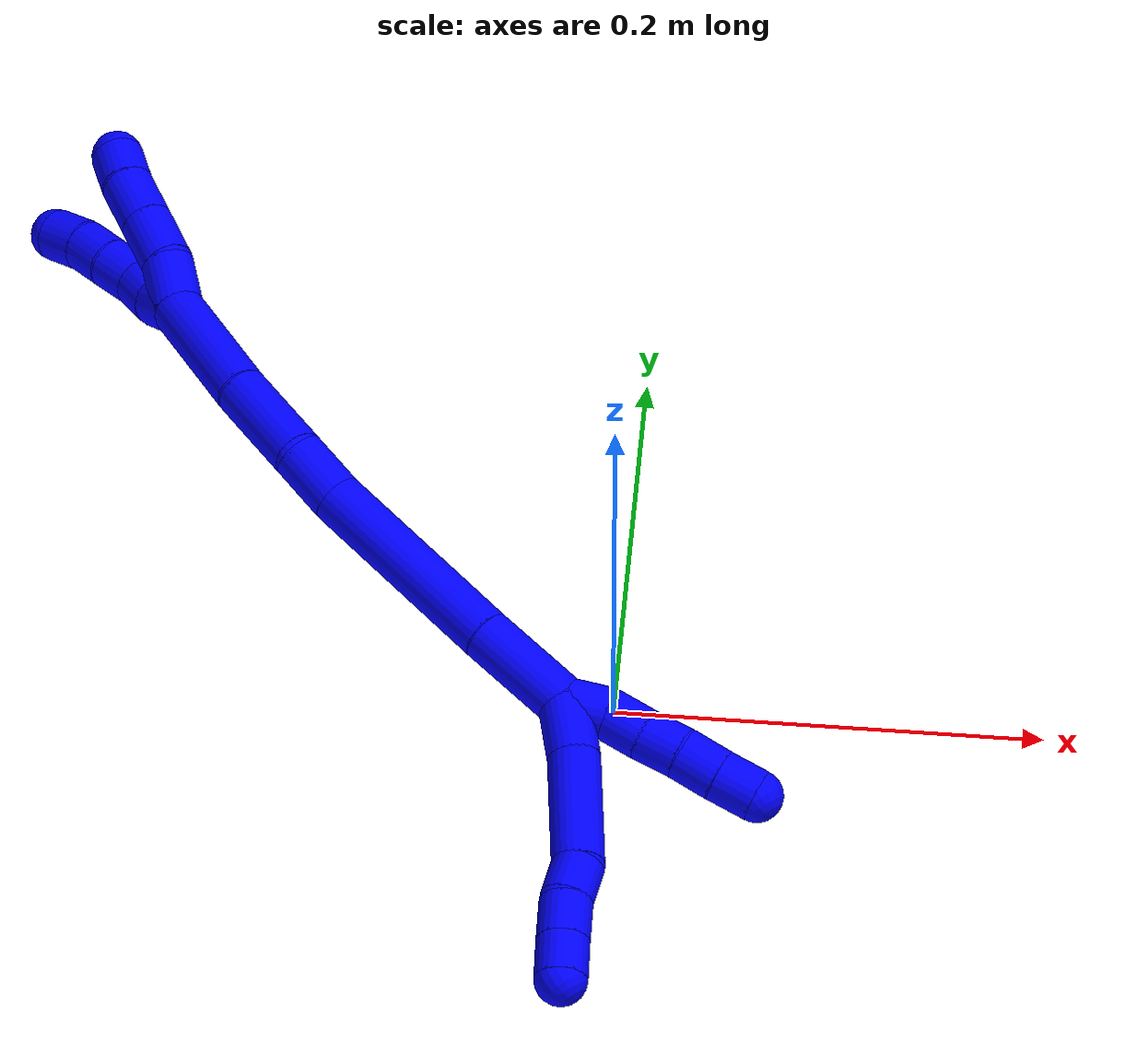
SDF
<sdf version="1.7">
 <world name="default">
  <model name="photoneo_s_sensor">
   <static>1</static>
   <pose>0 0 2 1.57079 1.57079 3.14159</pose>
   <link name="link">
    <inertial><mass>0.1</mass></inertial>
    <sensor name="sensor" type="depth">
     <update_rate>30</update_rate>
     <camera>
      <horizontal_fov>1.22</horizontal_fov>
      <image><width>1920</width><height>1200</height><format>B8G8R8</format></image>
      <clip><near>0.1</near><far>4</far></clip>
      <depth_camera><output>points</output></depth_camera>
     </camera>
     <plugin name="camera_plugin" filename="libgazebo_ros_depth_camera.so">
      <baseline>0.2</baseline>
      <alwaysOn>1</alwaysOn>
      <updateRate>0.0</updateRate>
      <cameraName>camera_ir</cameraName>
      <imageTopicName>/camera/color/image_raw</imageTopicName>
      <cameraInfoTopicName>/camera/color/camera_info</cameraInfoTopicName>
      <depthImageTopicName>/camera/depth/image_raw</depthImageTopicName>
      <depthImageCameraInfoTopicName>/camera/depth/camera_info</depthImageCameraInfoTopicName>
      <pointCloudTopicName>/camera/depth/points</pointCloudTopicName>
      <frameName>fr_optical</frameName>
      <pointCloudCutoff>0.1</pointCloudCutoff>
      <pointCloudCutoffMax>2.0</pointCloudCutoffMax>
      <distortionK1>0</distortionK1>
      <distortionK2>0</distortionK2>
      <distortionK3>0</distortionK3>
      <distortionT1>0</distortionT1>
      <distortionT2>0</distortionT2>
      <CxPrime>0</CxPrime>
      <Cx>0</Cx>
      <Cy>0</Cy>
      <focalLength>0</focalLength>
      <hackBaseline>0</hackBaseline>
     </plugin>
    </sensor>
   </link>
  </model>
  <model name="bin">
   <static>1</static>
   <link name="bottom">
    <collision name="collision-bottom">
     <pose>0 0 -0.01 0 -0 0</pose>
     <geometry><box><size>0.8 0.6 0.02</size></box></geometry>
     <surface>
      <friction><ode><mu>100</mu><mu2>100</mu2></ode></friction>
      <contact><collide_bitmask>65535</collide_bitmask></contact>
     </surface>
    </collision>
   </link>
   <link name="west_wall">
    <collision name="collision-west_wall">
     <pose>-0.41 0 0.1 0 -0 0</pose>
     <geometry><box><size>0.02 0.6 0.2</size></box></geometry>
     <surface>
      <friction><ode><mu>100</mu><mu2>100</mu2></ode></friction>
      <contact><collide_bitmask>65535</collide_bitmask></contact>
     </surface>
    </collision>
   </link>
   <link name="east_wall">
    <collision name="collision-east_wall">
     <pose>0.41 0 0.1 0 -0 0</pose>
     <geometry><box><size>0.02 0.6 0.2</size></box></geometry>
     <surface>
      <friction><ode><mu>100</mu><mu2>100</mu2></ode></friction>
      <contact><collide_bitmask>65535</collide_bitmask></contact>
     </surface>
    </collision>
   </link>
   <link name="south_wall">
    <collision name="collision-south_wall">
     <pose>0 -0.31 0.1 0 -0 0</pose>
     <geometry><box><size>0.8 0.02 0.2</size></box></geometry>
     <surface>
      <friction><ode><mu>100</mu><mu2>100</mu2></ode></friction>
      <contact><collide_bitmask>65535</collide_bitmask></contact>
     </surface>
    </collision>
   </link>
   <link name="north_wall">
    <collision name="collision-north_wall">
     <pose>0 0.31 0.1 0 -0 0</pose>
     <geometry><box><size>0.8 0.02 0.2</size></box></geometry>
     <surface>
      <friction><ode><mu>100</mu><mu2>100</mu2></ode></friction>
      <contact><collide_bitmask>65535</collide_bitmask></contact>
     </surface>
    </collision>
   </link>
  </model>
  <model name="1">
   <static>0</static>
   <link name="1">
    <collision name="collision-cylinder-e_1_2_8">
     <pose>-0.000139 -0.006528 -0.012762 2.66879 -0.009706 -0.040283</pose>
     <geometry><cylinder><radius>0.0125</radius><length>0.028671</length></cylinder></geometry>
     <surface>
      <friction><ode><mu>1.16</mu><mu2>1.16</mu2><slip1>0</slip1><slip2>0</slip2></ode></friction>
      <contact><ode><kp>1e+06</kp><kd>1</kd><max_vel>0</max_vel><min_depth>0.001</min_depth></ode></contact>
     </surface>
    </collision>
    <visual name="visual-cylinder-e_1_2_8">
     <pose>-0.000139 -0.006528 -0.012762 2.66879 -0.009706 -0.040283</pose>
     <geometry><cylinder><radius>0.0125</radius><length>0.028671</length></cylinder></geometry>
     <material><ambient>0 0 1 1</ambient></material>
    </visual>
    <collision name="collision-cylinder-e_2_8_9">
     <pose>0.001338 -0.03099 -0.04934 2.49613 0.054158 0.161633</pose>
     <geometry><cylinder><radius>0.0125</radius><length>0.059714</length></cylinder></geometry>
     <surface>
      <friction><ode><mu>1.16</mu><mu2>1.16</mu2><slip1>0</slip1><slip2>0</slip2></ode></friction>
      <contact><ode><kp>1e+06</kp><kd>1</kd><max_vel>0</max_vel><min_depth>0.001</min_depth></ode></contact>
     </surface>
    </collision>
    <visual name="visual-cylinder-e_2_8_9">
     <pose>0.001338 -0.03099 -0.04934 2.49613 0.054158 0.161633</pose>
     <geometry><cylinder><radius>0.0125</radius><length>0.059714</length></cylinder></geometry>
     <material><ambient>0 0 1 1</ambient></material>
    </visual>
    <collision name="collision-cylinder-e_3_9_10">
     <pose>0.002292 -0.057091 -0.079331 2.2183 -0.064612 -0.129735</pose>
     <geometry><cylinder><radius>0.0125</radius><length>0.020519</length></cylinder></geometry>
     <surface>
      <friction><ode><mu>1.16</mu><mu2>1.16</mu2><slip1>0</slip1><slip2>0</slip2></ode></friction>
      <contact><ode><kp>1e+06</kp><kd>1</kd><max_vel>0</max_vel><min_depth>0.001</min_depth></ode></contact>
     </surface>
    </collision>
    <visual name="visual-cylinder-e_3_9_10">
     <pose>0.002292 -0.057091 -0.079331 2.2183 -0.064612 -0.129735</pose>
     <geometry><cylinder><radius>0.0125</radius><length>0.020519</length></cylinder></geometry>
     <material><ambient>0 0 1 1</ambient></material>
    </visual>
    <collision name="collision-cylinder-e_4_10_11">
     <pose>0.000861 -0.071905 -0.093508 2.44826 -0.073746 -0.203525</pose>
     <geometry><cylinder><radius>0.0125</radius><length>0.020863</length></cylinder></geometry>
     <surface>
      <friction><ode><mu>1.16</mu><mu2>1.16</mu2><slip1>0</slip1><slip2>0</slip2></ode></friction>
      <contact><ode><kp>1e+06</kp><kd>1</kd><max_vel>0</max_vel><min_depth>0.001</min_depth></ode></contact>
     </surface>
    </collision>
    <visual name="visual-cylinder-e_4_10_11">
     <pose>0.000861 -0.071905 -0.093508 2.44826 -0.073746 -0.203525</pose>
     <geometry><cylinder><radius>0.0125</radius><length>0.020863</length></cylinder></geometry>
     <material><ambient>0 0 1 1</ambient></material>
    </visual>
    <collision name="collision-cylinder-e_5_11_6">
     <pose>-0.000434 -0.084897 -0.109373 2.46288 -0.052051 -0.147216</pose>
     <geometry><cylinder><radius>0.0125</radius><length>0.020233</length></cylinder></geometry>
     <surface>
      <friction><ode><mu>1.16</mu><mu2>1.16</mu2><slip1>0</slip1><slip2>0</slip2></ode></friction>
      <contact><ode><kp>1e+06</kp><kd>1</kd><max_vel>0</max_vel><min_depth>0.001</min_depth></ode></contact>
     </surface>
    </collision>
    <visual name="visual-cylinder-e_5_11_6">
     <pose>-0.000434 -0.084897 -0.109373 2.46288 -0.052051 -0.147216</pose>
     <geometry><cylinder><radius>0.0125</radius><length>0.020233</length></cylinder></geometry>
     <material><ambient>0 0 1 1</ambient></material>
    </visual>
    <collision name="collision-cylinder-e_1_2_12">
     <pose>0.003317 0.006254 -0.007063 -2.41687 0.338118 -0.846109</pose>
     <geometry><cylinder><radius>0.0125</radius><length>0.02</length></cylinder></geometry>
     <surface>
      <friction><ode><mu>1.16</mu><mu2>1.16</mu2><slip1>0</slip1><slip2>0</slip2></ode></friction>
      <contact><ode><kp>1e+06</kp><kd>1</kd><max_vel>0</max_vel><min_depth>0.001</min_depth></ode></contact>
     </surface>
    </collision>
    <visual name="visual-cylinder-e_1_2_12">
     <pose>0.003317 0.006254 -0.007063 -2.41687 0.338118 -0.846109</pose>
     <geometry><cylinder><radius>0.0125</radius><length>0.02</length></cylinder></geometry>
     <material><ambient>0 0 1 1</ambient></material>
    </visual>
    <collision name="collision-cylinder-e_2_12_13">
     <pose>0.009265 0.016237 -0.023024 -2.74468 0.26618 -1.17472</pose>
     <geometry><cylinder><radius>0.0125</radius><length>0.02</length></cylinder></geometry>
     <surface>
      <friction><ode><mu>1.16</mu><mu2>1.16</mu2><slip1>0</slip1><slip2>0</slip2></ode></friction>
      <contact><ode><kp>1e+06</kp><kd>1</kd><max_vel>0</max_vel><min_depth>0.001</min_depth></ode></contact>
     </surface>
    </collision>
    <visual name="visual-cylinder-e_2_12_13">
     <pose>0.009265 0.016237 -0.023024 -2.74468 0.26618 -1.17472</pose>
     <geometry><cylinder><radius>0.0125</radius><length>0.02</length></cylinder></geometry>
     <material><ambient>0 0 1 1</ambient></material>
    </visual>
    <collision name="collision-cylinder-e_3_13_14">
     <pose>0.015605 0.023247 -0.040609 -2.78055 0.380089 -1.62337</pose>
     <geometry><cylinder><radius>0.0125</radius><length>0.02</length></cylinder></geometry>
     <surface>
      <friction><ode><mu>1.16</mu><mu2>1.16</mu2><slip1>0</slip1><slip2>0</slip2></ode></friction>
      <contact><ode><kp>1e+06</kp><kd>1</kd><max_vel>0</max_vel><min_depth>0.001</min_depth></ode></contact>
     </surface>
    </collision>
    <visual name="visual-cylinder-e_3_13_14">
     <pose>0.015605 0.023247 -0.040609 -2.78055 0.380089 -1.62337</pose>
     <geometry><cylinder><radius>0.0125</radius><length>0.02</length></cylinder></geometry>
     <material><ambient>0 0 1 1</ambient></material>
    </visual>
    <collision name="collision-cylinder-e_4_14_15">
     <pose>0.021966 0.030012 -0.058288 -2.77193 0.268261 -1.25033</pose>
     <geometry><cylinder><radius>0.0125</radius><length>0.02</length></cylinder></geometry>
     <surface>
      <friction><ode><mu>1.16</mu><mu2>1.16</mu2><slip1>0</slip1><slip2>0</slip2></ode></friction>
      <contact><ode><kp>1e+06</kp><kd>1</kd><max_vel>0</max_vel><min_depth>0.001</min_depth></ode></contact>
     </surface>
    </collision>
    <visual name="visual-cylinder-e_4_14_15">
     <pose>0.021966 0.030012 -0.058288 -2.77193 0.268261 -1.25033</pose>
     <geometry><cylinder><radius>0.0125</radius><length>0.02</length></cylinder></geometry>
     <material><ambient>0 0 1 1</ambient></material>
    </visual>
    <collision name="collision-cylinder-e_5_15_5">
     <pose>0.027347 0.037434 -0.076056 -2.71983 0.276548 -1.15288</pose>
     <geometry><cylinder><radius>0.0125</radius><length>0.02</length></cylinder></geometry>
     <surface>
      <friction><ode><mu>1.16</mu><mu2>1.16</mu2><slip1>0</slip1><slip2>0</slip2></ode></friction>
      <contact><ode><kp>1e+06</kp><kd>1</kd><max_vel>0</max_vel><min_depth>0.001</min_depth></ode></contact>
     </surface>
    </collision>
    <visual name="visual-cylinder-e_5_15_5">
     <pose>0.027347 0.037434 -0.076056 -2.71983 0.276548 -1.15288</pose>
     <geometry><cylinder><radius>0.0125</radius><length>0.02</length></cylinder></geometry>
     <material><ambient>0 0 1 1</ambient></material>
    </visual>
    <collision name="collision-cylinder-e_1_2_16">
     <pose>-0.007611 -0.002105 0.02442 0.085984 -0.301078 -0.01305</pose>
     <geometry><cylinder><radius>0.0125</radius><length>0.05133</length></cylinder></geometry>
     <surface>
      <friction><ode><mu>1.16</mu><mu2>1.16</mu2><slip1>0</slip1><slip2>0</slip2></ode></friction>
      <contact><ode><kp>1e+06</kp><kd>1</kd><max_vel>0</max_vel><min_depth>0.001</min_depth></ode></contact>
     </surface>
    </collision>
    <visual name="visual-cylinder-e_1_2_16">
     <pose>-0.007611 -0.002105 0.02442 0.085984 -0.301078 -0.01305</pose>
     <geometry><cylinder><radius>0.0125</radius><length>0.05133</length></cylinder></geometry>
     <material><ambient>0 0 1 1</ambient></material>
    </visual>
    <collision name="collision-cylinder-e_2_16_17">
     <pose>-0.031648 -0.005632 0.097844 0.029021 -0.323295 -0.004733</pose>
     <geometry><cylinder><radius>0.0125</radius><length>0.103405</length></cylinder></geometry>
     <surface>
      <friction><ode><mu>1.16</mu><mu2>1.16</mu2><slip1>0</slip1><slip2>0</slip2></ode></friction>
      <contact><ode><kp>1e+06</kp><kd>1</kd><max_vel>0</max_vel><min_depth>0.001</min_depth></ode></contact>
     </surface>
    </collision>
    <visual name="visual-cylinder-e_2_16_17">
     <pose>-0.031648 -0.005632 0.097844 0.029021 -0.323295 -0.004733</pose>
     <geometry><cylinder><radius>0.0125</radius><length>0.103405</length></cylinder></geometry>
     <material><ambient>0 0 1 1</ambient></material>
    </visual>
    <collision name="collision-cylinder-e_3_17_18">
     <pose>-0.051039 -0.007245 0.161217 0.013233 -0.203532 -0.001351</pose>
     <geometry><cylinder><radius>0.0125</radius><length>0.029349</length></cylinder></geometry>
     <surface>
      <friction><ode><mu>1.16</mu><mu2>1.16</mu2><slip1>0</slip1><slip2>0</slip2></ode></friction>
      <contact><ode><kp>1e+06</kp><kd>1</kd><max_vel>0</max_vel><min_depth>0.001</min_depth></ode></contact>
     </surface>
    </collision>
    <visual name="visual-cylinder-e_3_17_18">
     <pose>-0.051039 -0.007245 0.161217 0.013233 -0.203532 -0.001351</pose>
     <geometry><cylinder><radius>0.0125</radius><length>0.029349</length></cylinder></geometry>
     <material><ambient>0 0 1 1</ambient></material>
    </visual>
    <collision name="collision-cylinder-e_4_18_19">
     <pose>-0.063519 -0.003429 0.19798 -0.177046 -0.396117 0.035621</pose>
     <geometry><cylinder><radius>0.0125</radius><length>0.049314</length></cylinder></geometry>
     <surface>
      <friction><ode><mu>1.16</mu><mu2>1.16</mu2><slip1>0</slip1><slip2>0</slip2></ode></friction>
      <contact><ode><kp>1e+06</kp><kd>1</kd><max_vel>0</max_vel><min_depth>0.001</min_depth></ode></contact>
     </surface>
    </collision>
    <visual name="visual-cylinder-e_4_18_19">
     <pose>-0.063519 -0.003429 0.19798 -0.177046 -0.396117 0.035621</pose>
     <geometry><cylinder><radius>0.0125</radius><length>0.049314</length></cylinder></geometry>
     <material><ambient>0 0 1 1</ambient></material>
    </visual>
    <collision name="collision-cylinder-e_5_19_1">
     <pose>-0.086823 0.009424 0.249363 -0.296181 -0.426968 0.064659</pose>
     <geometry><cylinder><radius>0.0125</radius><length>0.066602</length></cylinder></geometry>
     <surface>
      <friction><ode><mu>1.16</mu><mu2>1.16</mu2><slip1>0</slip1><slip2>0</slip2></ode></friction>
      <contact><ode><kp>1e+06</kp><kd>1</kd><max_vel>0</max_vel><min_depth>0.001</min_depth></ode></contact>
     </surface>
    </collision>
    <visual name="visual-cylinder-e_5_19_1">
     <pose>-0.086823 0.009424 0.249363 -0.296181 -0.426968 0.064659</pose>
     <geometry><cylinder><radius>0.0125</radius><length>0.066602</length></cylinder></geometry>
     <material><ambient>0 0 1 1</ambient></material>
    </visual>
    <collision name="collision-cylinder-e_1_1_20">
     <pose>-0.101006 0.023652 0.290054 -0.431052 -0.030453 0.006667</pose>
     <geometry><cylinder><radius>0.0125</radius><length>0.025766</length></cylinder></geometry>
     <surface>
      <friction><ode><mu>1.16</mu><mu2>1.16</mu2><slip1>0</slip1><slip2>0</slip2></ode></friction>
      <contact><ode><kp>1e+06</kp><kd>1</kd><max_vel>0</max_vel><min_depth>0.001</min_depth></ode></contact>
     </surface>
    </collision>
    <visual name="visual-cylinder-e_1_1_20">
     <pose>-0.101006 0.023652 0.290054 -0.431052 -0.030453 0.006667</pose>
     <geometry><cylinder><radius>0.0125</radius><length>0.025766</length></cylinder></geometry>
     <material><ambient>0 0 1 1</ambient></material>
    </visual>
    <collision name="collision-cylinder-e_2_20_21">
     <pose>-0.105208 0.033663 0.314161 -0.357162 -0.280129 0.050887</pose>
     <geometry><cylinder><radius>0.0125</radius><length>0.027563</length></cylinder></geometry>
     <surface>
      <friction><ode><mu>1.16</mu><mu2>1.16</mu2><slip1>0</slip1><slip2>0</slip2></ode></friction>
      <contact><ode><kp>1e+06</kp><kd>1</kd><max_vel>0</max_vel><min_depth>0.001</min_depth></ode></contact>
     </surface>
    </collision>
    <visual name="visual-cylinder-e_2_20_21">
     <pose>-0.105208 0.033663 0.314161 -0.357162 -0.280129 0.050887</pose>
     <geometry><cylinder><radius>0.0125</radius><length>0.027563</length></cylinder></geometry>
     <material><ambient>0 0 1 1</ambient></material>
    </visual>
    <collision name="collision-cylinder-e_3_21_22">
     <pose>-0.112739 0.042728 0.33849 -0.356214 -0.28461 0.051571</pose>
     <geometry><cylinder><radius>0.0125</radius><length>0.026505</length></cylinder></geometry>
     <surface>
      <friction><ode><mu>1.16</mu><mu2>1.16</mu2><slip1>0</slip1><slip2>0</slip2></ode></friction>
      <contact><ode><kp>1e+06</kp><kd>1</kd><max_vel>0</max_vel><min_depth>0.001</min_depth></ode></contact>
     </surface>
    </collision>
    <visual name="visual-cylinder-e_3_21_22">
     <pose>-0.112739 0.042728 0.33849 -0.356214 -0.28461 0.051571</pose>
     <geometry><cylinder><radius>0.0125</radius><length>0.026505</length></cylinder></geometry>
     <material><ambient>0 0 1 1</ambient></material>
    </visual>
    <collision name="collision-cylinder-e_4_22_4">
     <pose>-0.119178 0.051794 0.358946 -0.497084 -0.272929 0.069671</pose>
     <geometry><cylinder><radius>0.0125</radius><length>0.020167</length></cylinder></geometry>
     <surface>
      <friction><ode><mu>1.16</mu><mu2>1.16</mu2><slip1>0</slip1><slip2>0</slip2></ode></friction>
      <contact><ode><kp>1e+06</kp><kd>1</kd><max_vel>0</max_vel><min_depth>0.001</min_depth></ode></contact>
     </surface>
    </collision>
    <visual name="visual-cylinder-e_4_22_4">
     <pose>-0.119178 0.051794 0.358946 -0.497084 -0.272929 0.069671</pose>
     <geometry><cylinder><radius>0.0125</radius><length>0.020167</length></cylinder></geometry>
     <material><ambient>0 0 1 1</ambient></material>
    </visual>
    <collision name="collision-cylinder-e_1_1_23">
     <pose>-0.108135 0.020816 0.284434 -0.396397 -0.85134 0.181613</pose>
     <geometry><cylinder><radius>0.0125</radius><length>0.02</length></cylinder></geometry>
     <surface>
      <friction><ode><mu>1.16</mu><mu2>1.16</mu2><slip1>0</slip1><slip2>0</slip2></ode></friction>
      <contact><ode><kp>1e+06</kp><kd>1</kd><max_vel>0</max_vel><min_depth>0.001</min_depth></ode></contact>
     </surface>
    </collision>
    <visual name="visual-cylinder-e_1_1_23">
     <pose>-0.108135 0.020816 0.284434 -0.396397 -0.85134 0.181613</pose>
     <geometry><cylinder><radius>0.0125</radius><length>0.02</length></cylinder></geometry>
     <material><ambient>0 0 1 1</ambient></material>
    </visual>
    <collision name="collision-cylinder-e_2_23_24">
     <pose>-0.12106 0.026173 0.298442 -0.340869 -0.570894 0.100926</pose>
     <geometry><cylinder><radius>0.0125</radius><length>0.02</length></cylinder></geometry>
     <surface>
      <friction><ode><mu>1.16</mu><mu2>1.16</mu2><slip1>0</slip1><slip2>0</slip2></ode></friction>
      <contact><ode><kp>1e+06</kp><kd>1</kd><max_vel>0</max_vel><min_depth>0.001</min_depth></ode></contact>
     </surface>
    </collision>
    <visual name="visual-cylinder-e_2_23_24">
     <pose>-0.12106 0.026173 0.298442 -0.340869 -0.570894 0.100926</pose>
     <geometry><cylinder><radius>0.0125</radius><length>0.02</length></cylinder></geometry>
     <material><ambient>0 0 1 1</ambient></material>
    </visual>
    <collision name="collision-cylinder-e_3_24_25">
     <pose>-0.131546 0.029029 0.314985 -0.005016 -0.533069 0.00137</pose>
     <geometry><cylinder><radius>0.0125</radius><length>0.02</length></cylinder></geometry>
     <surface>
      <friction><ode><mu>1.16</mu><mu2>1.16</mu2><slip1>0</slip1><slip2>0</slip2></ode></friction>
      <contact><ode><kp>1e+06</kp><kd>1</kd><max_vel>0</max_vel><min_depth>0.001</min_depth></ode></contact>
     </surface>
    </collision>
    <visual name="visual-cylinder-e_3_24_25">
     <pose>-0.131546 0.029029 0.314985 -0.005016 -0.533069 0.00137</pose>
     <geometry><cylinder><radius>0.0125</radius><length>0.02</length></cylinder></geometry>
     <material><ambient>0 0 1 1</ambient></material>
    </visual>
    <collision name="collision-cylinder-e_4_25_26">
     <pose>-0.142164 0.030036 0.331869 -0.115943 -0.586741 0.035061</pose>
     <geometry><cylinder><radius>0.0125</radius><length>0.02</length></cylinder></geometry>
     <surface>
      <friction><ode><mu>1.16</mu><mu2>1.16</mu2><slip1>0</slip1><slip2>0</slip2></ode></friction>
      <contact><ode><kp>1e+06</kp><kd>1</kd><max_vel>0</max_vel><min_depth>0.001</min_depth></ode></contact>
     </surface>
    </collision>
    <visual name="visual-cylinder-e_4_25_26">
     <pose>-0.142164 0.030036 0.331869 -0.115943 -0.586741 0.035061</pose>
     <geometry><cylinder><radius>0.0125</radius><length>0.02</length></cylinder></geometry>
     <material><ambient>0 0 1 1</ambient></material>
    </visual>
    <collision name="collision-cylinder-e_5_26_3">
     <pose>-0.154457 0.030923 0.347512 0.010343 -0.741861 -0.004023</pose>
     <geometry><cylinder><radius>0.0125</radius><length>0.02</length></cylinder></geometry>
     <surface>
      <friction><ode><mu>1.16</mu><mu2>1.16</mu2><slip1>0</slip1><slip2>0</slip2></ode></friction>
      <contact><ode><kp>1e+06</kp><kd>1</kd><max_vel>0</max_vel><min_depth>0.001</min_depth></ode></contact>
     </surface>
    </collision>
    <visual name="visual-cylinder-e_5_26_3">
     <pose>-0.154457 0.030923 0.347512 0.010343 -0.741861 -0.004023</pose>
     <geometry><cylinder><radius>0.0125</radius><length>0.02</length></cylinder></geometry>
     <material><ambient>0 0 1 1</ambient></material>
    </visual>
    <collision name="collision-sphere-3">
     <pose>-0.161214 0.030846 0.354884 0 -0 0</pose>
     <geometry><sphere><radius>0.0125</radius></sphere></geometry>
     <surface>
      <friction><ode><mu>1.16</mu><mu2>1.16</mu2><slip1>0</slip1><slip2>0</slip2></ode></friction>
      <contact><ode><kp>1e+06</kp><kd>1</kd><max_vel>0</max_vel><min_depth>0.001</min_depth></ode></contact>
     </surface>
    </collision>
    <visual name="visual-sphere-3">
     <pose>-0.161214 0.030846 0.354884 0 -0 0</pose>
     <geometry><sphere><radius>0.0125</radius></sphere></geometry>
     <material><ambient>0 0 1 1</ambient></material>
    </visual>
    <collision name="collision-sphere-26">
     <pose>-0.147701 0.030999 0.34014 0 -0 0</pose>
     <geometry><sphere><radius>0.0125</radius></sphere></geometry>
     <surface>
      <friction><ode><mu>1.16</mu><mu2>1.16</mu2><slip1>0</slip1><slip2>0</slip2></ode></friction>
      <contact><ode><kp>1e+06</kp><kd>1</kd><max_vel>0</max_vel><min_depth>0.001</min_depth></ode></contact>
     </surface>
    </collision>
    <visual name="visual-sphere-26">
     <pose>-0.147701 0.030999 0.34014 0 -0 0</pose>
     <geometry><sphere><radius>0.0125</radius></sphere></geometry>
     <material><ambient>0 0 1 1</ambient></material>
    </visual>
    <collision name="collision-sphere-25">
     <pose>-0.136628 0.029072 0.323597 0 -0 0</pose>
     <geometry><sphere><radius>0.0125</radius></sphere></geometry>
     <surface>
      <friction><ode><mu>1.16</mu><mu2>1.16</mu2><slip1>0</slip1><slip2>0</slip2></ode></friction>
      <contact><ode><kp>1e+06</kp><kd>1</kd><max_vel>0</max_vel><min_depth>0.001</min_depth></ode></contact>
     </surface>
    </collision>
    <visual name="visual-sphere-25">
     <pose>-0.136628 0.029072 0.323597 0 -0 0</pose>
     <geometry><sphere><radius>0.0125</radius></sphere></geometry>
     <material><ambient>0 0 1 1</ambient></material>
    </visual>
    <collision name="collision-sphere-24">
     <pose>-0.126464 0.028986 0.306372 0 -0 0</pose>
     <geometry><sphere><radius>0.0125</radius></sphere></geometry>
     <surface>
      <friction><ode><mu>1.16</mu><mu2>1.16</mu2><slip1>0</slip1><slip2>0</slip2></ode></friction>
      <contact><ode><kp>1e+06</kp><kd>1</kd><max_vel>0</max_vel><min_depth>0.001</min_depth></ode></contact>
     </surface>
    </collision>
    <visual name="visual-sphere-24">
     <pose>-0.126464 0.028986 0.306372 0 -0 0</pose>
     <geometry><sphere><radius>0.0125</radius></sphere></geometry>
     <material><ambient>0 0 1 1</ambient></material>
    </visual>
    <collision name="collision-sphere-23">
     <pose>-0.115657 0.02336 0.290512 0 -0 0</pose>
     <geometry><sphere><radius>0.0125</radius></sphere></geometry>
     <surface>
      <friction><ode><mu>1.16</mu><mu2>1.16</mu2><slip1>0</slip1><slip2>0</slip2></ode></friction>
      <contact><ode><kp>1e+06</kp><kd>1</kd><max_vel>0</max_vel><min_depth>0.001</min_depth></ode></contact>
     </surface>
    </collision>
    <visual name="visual-sphere-23">
     <pose>-0.115657 0.02336 0.290512 0 -0 0</pose>
     <geometry><sphere><radius>0.0125</radius></sphere></geometry>
     <material><ambient>0 0 1 1</ambient></material>
    </visual>
    <collision name="collision-sphere-4">
     <pose>-0.121896 0.056425 0.367481 0 -0 0</pose>
     <geometry><sphere><radius>0.0125</radius></sphere></geometry>
     <surface>
      <friction><ode><mu>1.16</mu><mu2>1.16</mu2><slip1>0</slip1><slip2>0</slip2></ode></friction>
      <contact><ode><kp>1e+06</kp><kd>1</kd><max_vel>0</max_vel><min_depth>0.001</min_depth></ode></contact>
     </surface>
    </collision>
    <visual name="visual-sphere-4">
     <pose>-0.121896 0.056425 0.367481 0 -0 0</pose>
     <geometry><sphere><radius>0.0125</radius></sphere></geometry>
     <material><ambient>0 0 1 1</ambient></material>
    </visual>
    <collision name="collision-sphere-22">
     <pose>-0.11646 0.047164 0.350411 0 -0 0</pose>
     <geometry><sphere><radius>0.0125</radius></sphere></geometry>
     <surface>
      <friction><ode><mu>1.16</mu><mu2>1.16</mu2><slip1>0</slip1><slip2>0</slip2></ode></friction>
      <contact><ode><kp>1e+06</kp><kd>1</kd><max_vel>0</max_vel><min_depth>0.001</min_depth></ode></contact>
     </surface>
    </collision>
    <visual name="visual-sphere-22">
     <pose>-0.11646 0.047164 0.350411 0 -0 0</pose>
     <geometry><sphere><radius>0.0125</radius></sphere></geometry>
     <material><ambient>0 0 1 1</ambient></material>
    </visual>
    <collision name="collision-sphere-21">
     <pose>-0.109018 0.038293 0.32657 0 -0 0</pose>
     <geometry><sphere><radius>0.0125</radius></sphere></geometry>
     <surface>
      <friction><ode><mu>1.16</mu><mu2>1.16</mu2><slip1>0</slip1><slip2>0</slip2></ode></friction>
      <contact><ode><kp>1e+06</kp><kd>1</kd><max_vel>0</max_vel><min_depth>0.001</min_depth></ode></contact>
     </surface>
    </collision>
    <visual name="visual-sphere-21">
     <pose>-0.109018 0.038293 0.32657 0 -0 0</pose>
     <geometry><sphere><radius>0.0125</radius></sphere></geometry>
     <material><ambient>0 0 1 1</ambient></material>
    </visual>
    <collision name="collision-sphere-20">
     <pose>-0.101398 0.029032 0.301753 0 -0 0</pose>
     <geometry><sphere><radius>0.0125</radius></sphere></geometry>
     <surface>
      <friction><ode><mu>1.16</mu><mu2>1.16</mu2><slip1>0</slip1><slip2>0</slip2></ode></friction>
      <contact><ode><kp>1e+06</kp><kd>1</kd><max_vel>0</max_vel><min_depth>0.001</min_depth></ode></contact>
     </surface>
    </collision>
    <visual name="visual-sphere-20">
     <pose>-0.101398 0.029032 0.301753 0 -0 0</pose>
     <geometry><sphere><radius>0.0125</radius></sphere></geometry>
     <material><ambient>0 0 1 1</ambient></material>
    </visual>
    <collision name="collision-sphere-6">
     <pose>-0.00096 -0.091239 -0.117237 0 -0 0</pose>
     <geometry><sphere><radius>0.0125</radius></sphere></geometry>
     <surface>
      <friction><ode><mu>1.16</mu><mu2>1.16</mu2><slip1>0</slip1><slip2>0</slip2></ode></friction>
      <contact><ode><kp>1e+06</kp><kd>1</kd><max_vel>0</max_vel><min_depth>0.001</min_depth></ode></contact>
     </surface>
    </collision>
    <visual name="visual-sphere-6">
     <pose>-0.00096 -0.091239 -0.117237 0 -0 0</pose>
     <geometry><sphere><radius>0.0125</radius></sphere></geometry>
     <material><ambient>0 0 1 1</ambient></material>
    </visual>
    <collision name="collision-sphere-11">
     <pose>9.2e-05 -0.078554 -0.101509 0 -0 0</pose>
     <geometry><sphere><radius>0.0125</radius></sphere></geometry>
     <surface>
      <friction><ode><mu>1.16</mu><mu2>1.16</mu2><slip1>0</slip1><slip2>0</slip2></ode></friction>
      <contact><ode><kp>1e+06</kp><kd>1</kd><max_vel>0</max_vel><min_depth>0.001</min_depth></ode></contact>
     </surface>
    </collision>
    <visual name="visual-sphere-11">
     <pose>9.2e-05 -0.078554 -0.101509 0 -0 0</pose>
     <geometry><sphere><radius>0.0125</radius></sphere></geometry>
     <material><ambient>0 0 1 1</ambient></material>
    </visual>
    <collision name="collision-sphere-10">
     <pose>0.001629 -0.065257 -0.085507 0 -0 0</pose>
     <geometry><sphere><radius>0.0125</radius></sphere></geometry>
     <surface>
      <friction><ode><mu>1.16</mu><mu2>1.16</mu2><slip1>0</slip1><slip2>0</slip2></ode></friction>
      <contact><ode><kp>1e+06</kp><kd>1</kd><max_vel>0</max_vel><min_depth>0.001</min_depth></ode></contact>
     </surface>
    </collision>
    <visual name="visual-sphere-10">
     <pose>0.001629 -0.065257 -0.085507 0 -0 0</pose>
     <geometry><sphere><radius>0.0125</radius></sphere></geometry>
     <material><ambient>0 0 1 1</ambient></material>
    </visual>
    <collision name="collision-sphere-9">
     <pose>0.002954 -0.048925 -0.073155 0 -0 0</pose>
     <geometry><sphere><radius>0.0125</radius></sphere></geometry>
     <surface>
      <friction><ode><mu>1.16</mu><mu2>1.16</mu2><slip1>0</slip1><slip2>0</slip2></ode></friction>
      <contact><ode><kp>1e+06</kp><kd>1</kd><max_vel>0</max_vel><min_depth>0.001</min_depth></ode></contact>
     </surface>
    </collision>
    <visual name="visual-sphere-9">
     <pose>0.002954 -0.048925 -0.073155 0 -0 0</pose>
     <geometry><sphere><radius>0.0125</radius></sphere></geometry>
     <material><ambient>0 0 1 1</ambient></material>
    </visual>
    <collision name="collision-sphere-2">
     <geometry><sphere><radius>0.0125</radius></sphere></geometry>
     <surface>
      <friction><ode><mu>1.16</mu><mu2>1.16</mu2><slip1>0</slip1><slip2>0</slip2></ode></friction>
      <contact><ode><kp>1e+06</kp><kd>1</kd><max_vel>0</max_vel><min_depth>0.001</min_depth></ode></contact>
     </surface>
    </collision>
    <visual name="visual-sphere-2">
     <geometry><sphere><radius>0.0125</radius></sphere></geometry>
     <material><ambient>0 0 1 1</ambient></material>
    </visual>
    <collision name="collision-sphere-19">
     <pose>-0.073033 0.000577 0.220372 0 -0 0</pose>
     <geometry><sphere><radius>0.0125</radius></sphere></geometry>
     <surface>
      <friction><ode><mu>1.16</mu><mu2>1.16</mu2><slip1>0</slip1><slip2>0</slip2></ode></friction>
      <contact><ode><kp>1e+06</kp><kd>1</kd><max_vel>0</max_vel><min_depth>0.001</min_depth></ode></contact>
     </surface>
    </collision>
    <visual name="visual-sphere-19">
     <pose>-0.073033 0.000577 0.220372 0 -0 0</pose>
     <geometry><sphere><radius>0.0125</radius></sphere></geometry>
     <material><ambient>0 0 1 1</ambient></material>
    </visual>
    <collision name="collision-sphere-8">
     <pose>-0.000278 -0.013056 -0.025524 0 -0 0</pose>
     <geometry><sphere><radius>0.0125</radius></sphere></geometry>
     <surface>
      <friction><ode><mu>1.16</mu><mu2>1.16</mu2><slip1>0</slip1><slip2>0</slip2></ode></friction>
      <contact><ode><kp>1e+06</kp><kd>1</kd><max_vel>0</max_vel><min_depth>0.001</min_depth></ode></contact>
     </surface>
    </collision>
    <visual name="visual-sphere-8">
     <pose>-0.000278 -0.013056 -0.025524 0 -0 0</pose>
     <geometry><sphere><radius>0.0125</radius></sphere></geometry>
     <material><ambient>0 0 1 1</ambient></material>
    </visual>
    <collision name="collision-sphere-12">
     <pose>0.006634 0.012508 -0.014126 0 -0 0</pose>
     <geometry><sphere><radius>0.0125</radius></sphere></geometry>
     <surface>
      <friction><ode><mu>1.16</mu><mu2>1.16</mu2><slip1>0</slip1><slip2>0</slip2></ode></friction>
      <contact><ode><kp>1e+06</kp><kd>1</kd><max_vel>0</max_vel><min_depth>0.001</min_depth></ode></contact>
     </surface>
    </collision>
    <visual name="visual-sphere-12">
     <pose>0.006634 0.012508 -0.014126 0 -0 0</pose>
     <geometry><sphere><radius>0.0125</radius></sphere></geometry>
     <material><ambient>0 0 1 1</ambient></material>
    </visual>
    <collision name="collision-sphere-13">
     <pose>0.011895 0.019967 -0.031921 0 -0 0</pose>
     <geometry><sphere><radius>0.0125</radius></sphere></geometry>
     <surface>
      <friction><ode><mu>1.16</mu><mu2>1.16</mu2><slip1>0</slip1><slip2>0</slip2></ode></friction>
      <contact><ode><kp>1e+06</kp><kd>1</kd><max_vel>0</max_vel><min_depth>0.001</min_depth></ode></contact>
     </surface>
    </collision>
    <visual name="visual-sphere-13">
     <pose>0.011895 0.019967 -0.031921 0 -0 0</pose>
     <geometry><sphere><radius>0.0125</radius></sphere></geometry>
     <material><ambient>0 0 1 1</ambient></material>
    </visual>
    <collision name="collision-sphere-14">
     <pose>0.019315 0.026528 -0.049297 0 -0 0</pose>
     <geometry><sphere><radius>0.0125</radius></sphere></geometry>
     <surface>
      <friction><ode><mu>1.16</mu><mu2>1.16</mu2><slip1>0</slip1><slip2>0</slip2></ode></friction>
      <contact><ode><kp>1e+06</kp><kd>1</kd><max_vel>0</max_vel><min_depth>0.001</min_depth></ode></contact>
     </surface>
    </collision>
    <visual name="visual-sphere-14">
     <pose>0.019315 0.026528 -0.049297 0 -0 0</pose>
     <geometry><sphere><radius>0.0125</radius></sphere></geometry>
     <material><ambient>0 0 1 1</ambient></material>
    </visual>
    <collision name="collision-sphere-15">
     <pose>0.024616 0.033495 -0.067279 0 -0 0</pose>
     <geometry><sphere><radius>0.0125</radius></sphere></geometry>
     <surface>
      <friction><ode><mu>1.16</mu><mu2>1.16</mu2><slip1>0</slip1><slip2>0</slip2></ode></friction>
      <contact><ode><kp>1e+06</kp><kd>1</kd><max_vel>0</max_vel><min_depth>0.001</min_depth></ode></contact>
     </surface>
    </collision>
    <visual name="visual-sphere-15">
     <pose>0.024616 0.033495 -0.067279 0 -0 0</pose>
     <geometry><sphere><radius>0.0125</radius></sphere></geometry>
     <material><ambient>0 0 1 1</ambient></material>
    </visual>
    <collision name="collision-sphere-5">
     <pose>0.030077 0.041372 -0.084833 0 -0 0</pose>
     <geometry><sphere><radius>0.0125</radius></sphere></geometry>
     <surface>
      <friction><ode><mu>1.16</mu><mu2>1.16</mu2><slip1>0</slip1><slip2>0</slip2></ode></friction>
      <contact><ode><kp>1e+06</kp><kd>1</kd><max_vel>0</max_vel><min_depth>0.001</min_depth></ode></contact>
     </surface>
    </collision>
    <visual name="visual-sphere-5">
     <pose>0.030077 0.041372 -0.084833 0 -0 0</pose>
     <geometry><sphere><radius>0.0125</radius></sphere></geometry>
     <material><ambient>0 0 1 1</ambient></material>
    </visual>
    <collision name="collision-sphere-16">
     <pose>-0.015222 -0.00421 0.04884 0 -0 0</pose>
     <geometry><sphere><radius>0.0125</radius></sphere></geometry>
     <surface>
      <friction><ode><mu>1.16</mu><mu2>1.16</mu2><slip1>0</slip1><slip2>0</slip2></ode></friction>
      <contact><ode><kp>1e+06</kp><kd>1</kd><max_vel>0</max_vel><min_depth>0.001</min_depth></ode></contact>
     </surface>
    </collision>
    <visual name="visual-sphere-16">
     <pose>-0.015222 -0.00421 0.04884 0 -0 0</pose>
     <geometry><sphere><radius>0.0125</radius></sphere></geometry>
     <material><ambient>0 0 1 1</ambient></material>
    </visual>
    <collision name="collision-sphere-17">
     <pose>-0.048073 -0.007055 0.146847 0 -0 0</pose>
     <geometry><sphere><radius>0.0125</radius></sphere></geometry>
     <surface>
      <friction><ode><mu>1.16</mu><mu2>1.16</mu2><slip1>0</slip1><slip2>0</slip2></ode></friction>
      <contact><ode><kp>1e+06</kp><kd>1</kd><max_vel>0</max_vel><min_depth>0.001</min_depth></ode></contact>
     </surface>
    </collision>
    <visual name="visual-sphere-17">
     <pose>-0.048073 -0.007055 0.146847 0 -0 0</pose>
     <geometry><sphere><radius>0.0125</radius></sphere></geometry>
     <material><ambient>0 0 1 1</ambient></material>
    </visual>
    <collision name="collision-sphere-18">
     <pose>-0.054005 -0.007435 0.175588 0 -0 0</pose>
     <geometry><sphere><radius>0.0125</radius></sphere></geometry>
     <surface>
      <friction><ode><mu>1.16</mu><mu2>1.16</mu2><slip1>0</slip1><slip2>0</slip2></ode></friction>
      <contact><ode><kp>1e+06</kp><kd>1</kd><max_vel>0</max_vel><min_depth>0.001</min_depth></ode></contact>
     </surface>
    </collision>
    <visual name="visual-sphere-18">
     <pose>-0.054005 -0.007435 0.175588 0 -0 0</pose>
     <geometry><sphere><radius>0.0125</radius></sphere></geometry>
     <material><ambient>0 0 1 1</ambient></material>
    </visual>
    <collision name="collision-sphere-1">
     <pose>-0.100613 0.018271 0.278355 0 -0 0</pose>
     <geometry><sphere><radius>0.0125</radius></sphere></geometry>
     <surface>
      <friction><ode><mu>1.16</mu><mu2>1.16</mu2><slip1>0</slip1><slip2>0</slip2></ode></friction>
      <contact><ode><kp>1e+06</kp><kd>1</kd><max_vel>0</max_vel><min_depth>0.001</min_depth></ode></contact>
     </surface>
    </collision>
    <visual name="visual-sphere-1">
     <pose>-0.100613 0.018271 0.278355 0 -0 0</pose>
     <geometry><sphere><radius>0.0125</radius></sphere></geometry>
     <material><ambient>0 0 1 1</ambient></material>
    </visual>
    <inertial>
     <pose>-0.04858 0.002461 0.124209 0 -0 0</pose>
     <mass>0.75</mass>
     <inertia>
      <ixx>0.000173</ixx>
      <ixy>0</ixy>
      <ixz>0</ixz>
      <iyy>0.000143</iyy>
      <iyz>0</iyz>
      <izz>7.7e-05</izz>
     </inertia>
    </inertial>
   </link>
   <pose>-0.021233 -0.020342 0.029847 -0.678309 -1.07173 -0.129554</pose>
  </model>
 </world>
</sdf>
